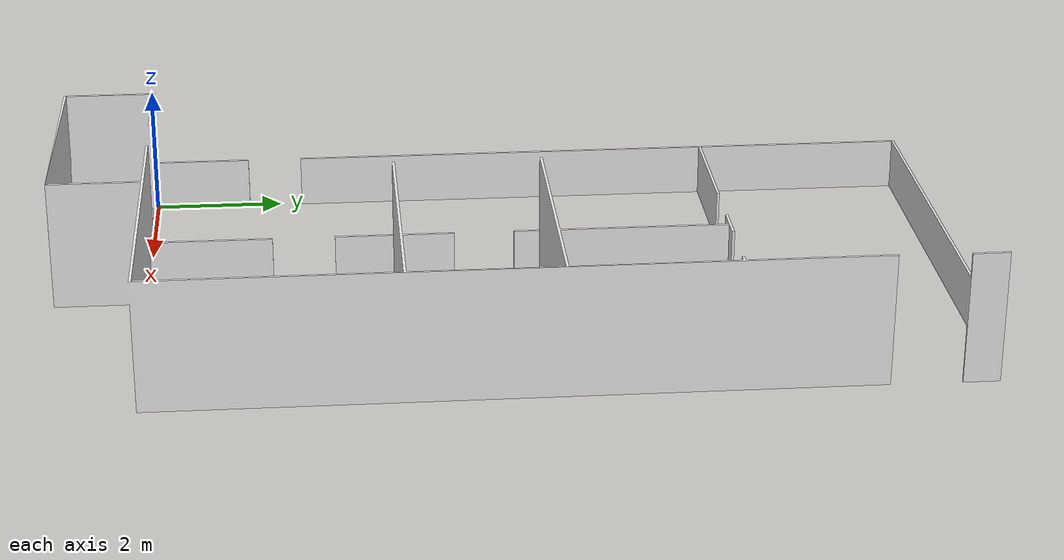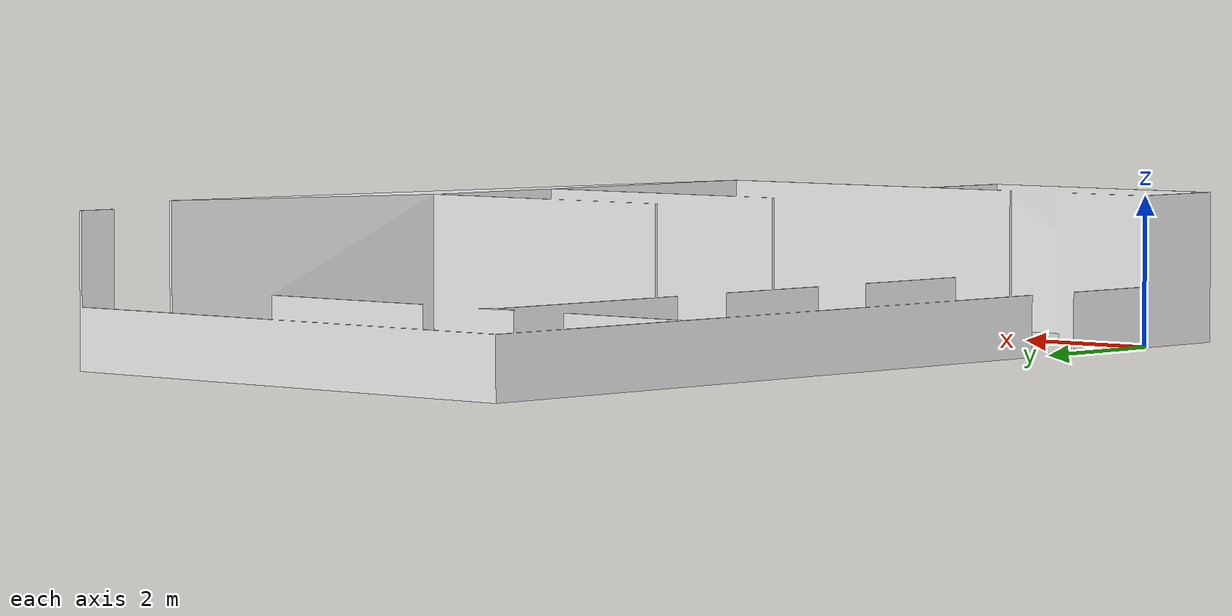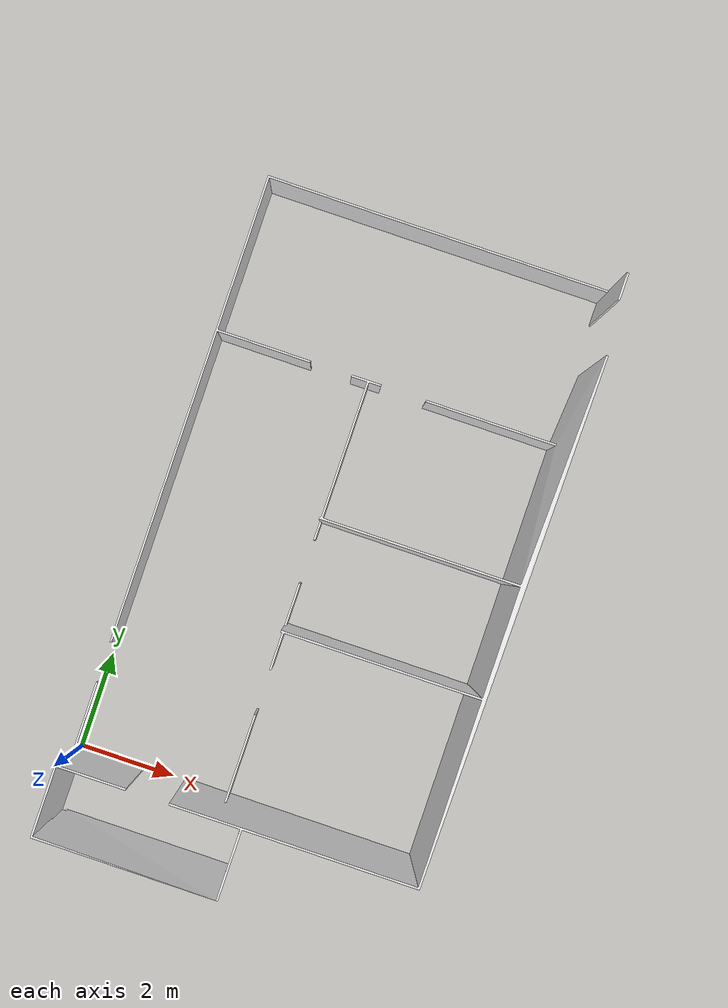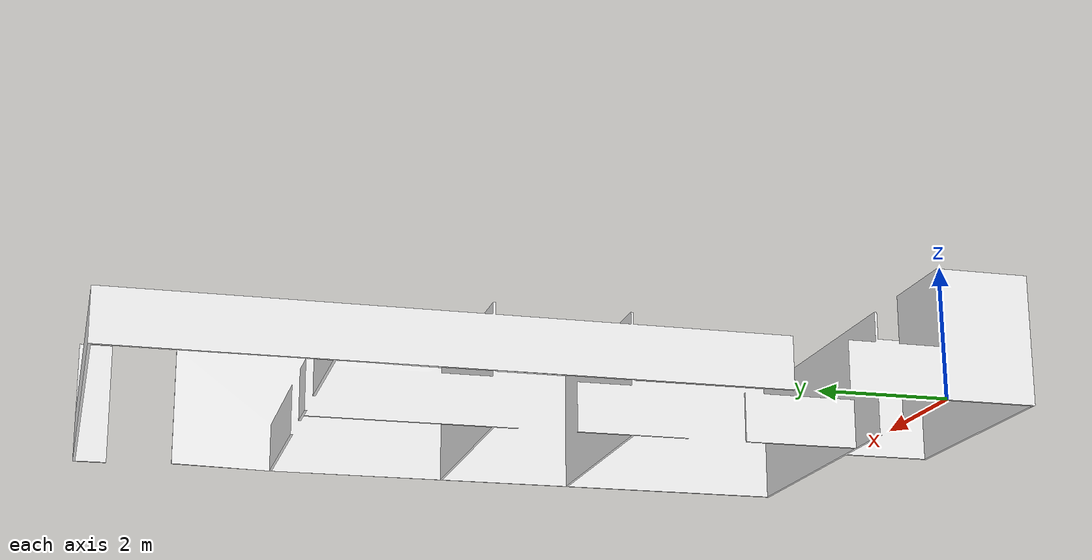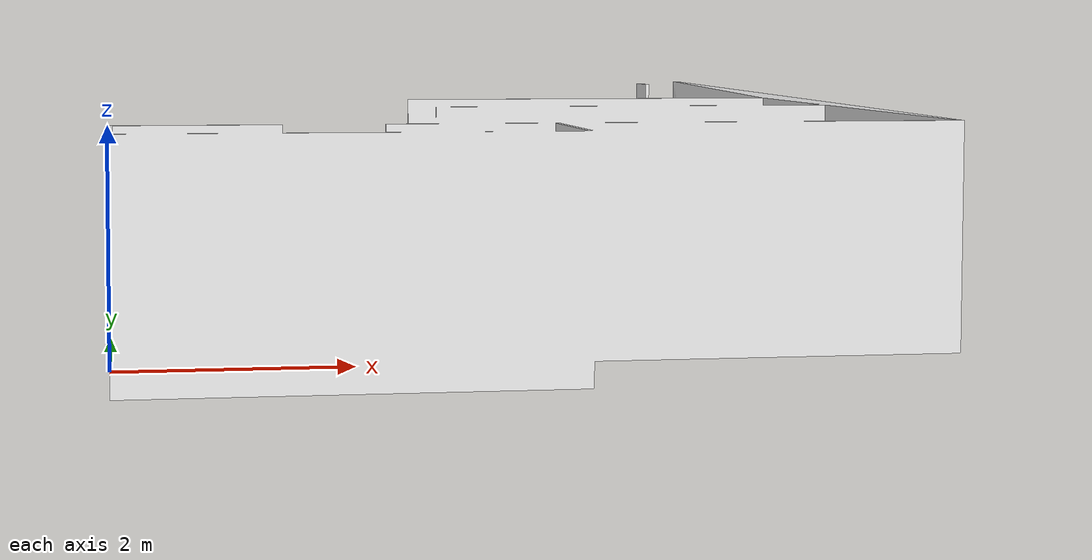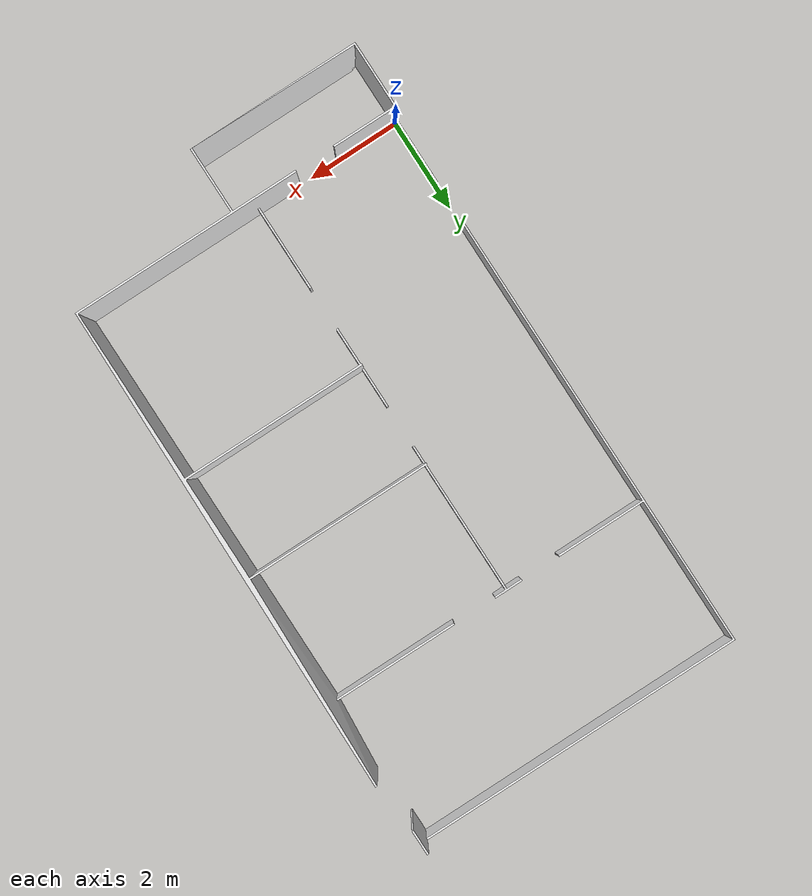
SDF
<sdf version="1.4">
  <model name="robocup_walls_70cm_doors">
    <static>1</static>
    <link name="link">

      <collision name="colision1">
        <pose>0 0 0 0 0 0</pose>
        <geometry>
          <mesh>
            <uri>model://robocup_walls_70cm_doors/meshes/robocup_house_large_doors_sas.stl</uri>
	    <scale> 1 1 1 </scale>
          </mesh>
        </geometry>
        <surface>
          <bounce />
          <friction>
            <ode />
          </friction>
          <contact>
            <ode />
          </contact>
        </surface>
      </collision>

      <visual name="visual1">
        <pose>0 0 0 0 0 0</pose>
        <geometry>
          <mesh>
            <uri>model://robocup_walls_70cm_doors/meshes/robocup_house_large_doors_sas.stl</uri>
	    <scale> 1 1 1 </scale>
          </mesh>
        </geometry>
        <material>
          <script>
            <uri>file://media/materials/scripts/gazebo.material</uri>
            <name>Gazebo/White</name>
          </script>
        </material>
      </visual>

      <velocity_decay>
        <linear>0.000000</linear>
        <angular>0.000000</angular>
      </velocity_decay>
      <self_collide>0</self_collide>
      <kinematic>0</kinematic>
      <gravity>1</gravity>
    </link>
  </model>
</sdf>
